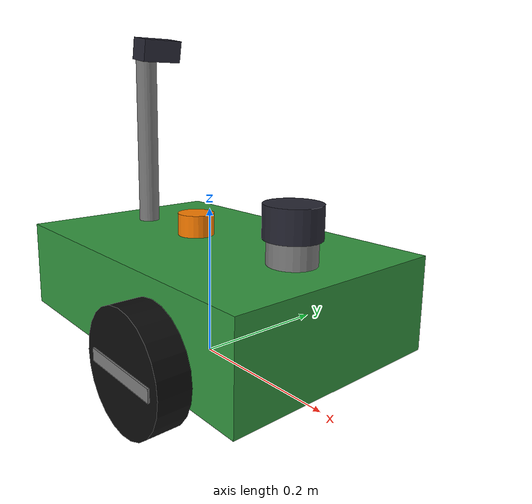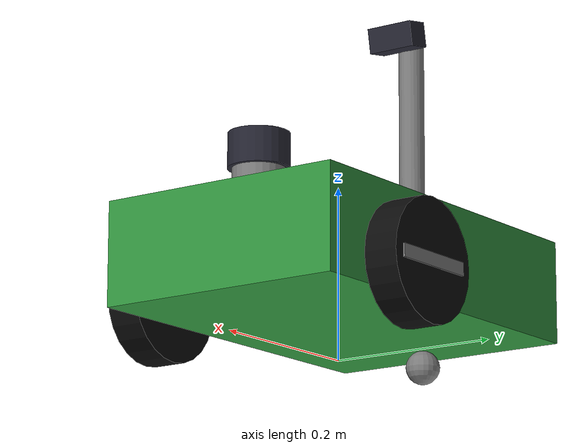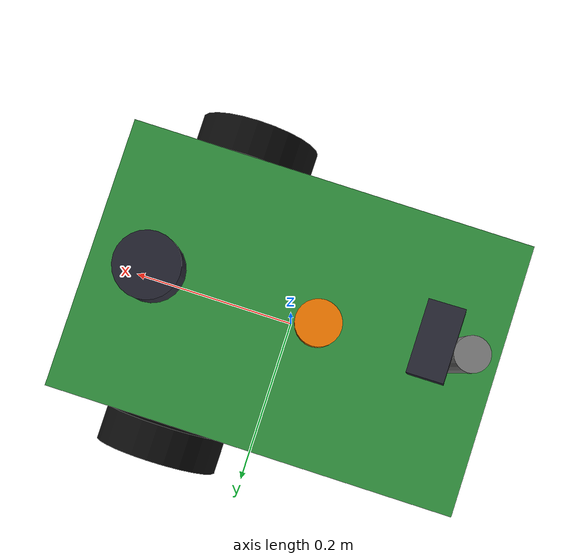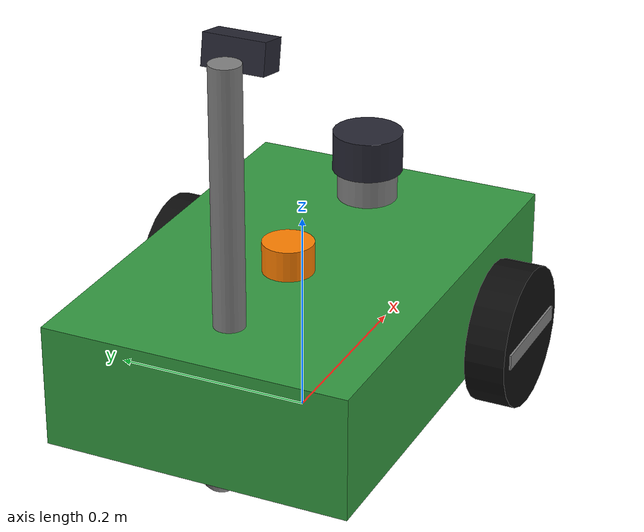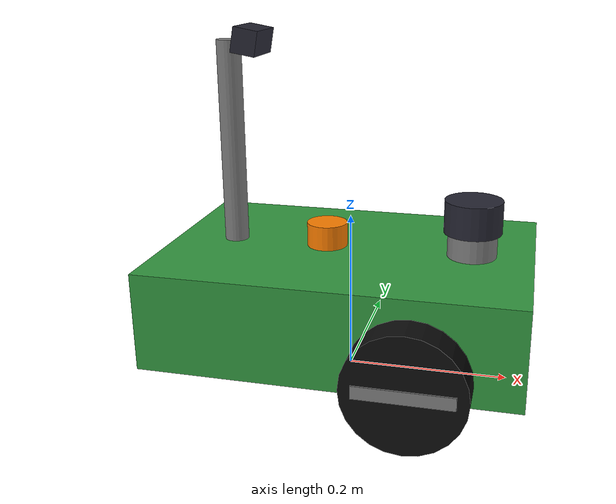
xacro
<?xml version="1.0"?>
<robot name="serabot" xmlns:xacro="http://www.ros.org/wiki/xacro">

  <xacro:include filename="inertial_macros.xacro"/>

  <!-- ===== Parametreler ===== -->
  <!-- Gövde -->
  <xacro:property name="body_length" value="0.45"/>
  <xacro:property name="body_width"  value="0.30"/>
  <xacro:property name="body_height" value="0.12"/>
  <xacro:property name="body_mass"   value="5.0"/>
  <xacro:property name="ground_clearance" value="0.04"/>

  <!-- Tekerlekler (gövdenin ön yarısında) -->
  <xacro:property name="wheel_radius" value="0.07"/>
  <xacro:property name="wheel_width"  value="0.04"/>
  <xacro:property name="wheel_mass"   value="0.5"/>
  <xacro:property name="wheel_x"      value="0.10"/>
  <xacro:property name="wheel_gap"    value="0.005"/>

  <!-- Arka küresel caster -->
  <xacro:property name="caster_radius" value="${ground_clearance/2}"/>
  <xacro:property name="caster_mass"   value="0.1"/>
  <xacro:property name="caster_x"      value="-0.17"/>

  <!-- Direk -->
  <xacro:property name="mast_radius" value="0.015"/>
  <xacro:property name="mast_height" value="0.25"/>
  <xacro:property name="mast_mass"   value="0.2"/>
  <xacro:property name="mast_x"      value="-0.15"/>

  <!-- LiDAR ve kaidesi -->
  <xacro:property name="lidar_x"        value="0.15"/>
  <xacro:property name="lidar_radius"   value="0.035"/>
  <xacro:property name="lidar_height"   value="0.04"/>
  <xacro:property name="lidar_mass"     value="0.15"/>
  <xacro:property name="pedestal_radius" value="0.03"/>
  <xacro:property name="pedestal_height" value="0.03"/>

  <!-- Kamera -->
  <xacro:property name="camera_size_x" value="0.03"/>
  <xacro:property name="camera_size_y" value="0.06"/>
  <xacro:property name="camera_size_z" value="0.03"/>
  <xacro:property name="camera_mass"   value="0.05"/>
  <xacro:property name="camera_pitch"  value="${10*pi/180}"/>

  <!-- Durum lambası -->
  <xacro:property name="lamp_radius" value="0.025"/>
  <xacro:property name="lamp_height" value="0.03"/>
  <xacro:property name="lamp_x"      value="-0.03"/>

  <!-- Türetilen değerler -->
  <xacro:property name="base_z" value="${ground_clearance + body_height/2}"/>
  <xacro:property name="wheel_y" value="${body_width/2 + wheel_width/2 + wheel_gap}"/>

  <!-- ===== Renkler ===== -->
  <material name="green">  <color rgba="0.20 0.60 0.25 1"/></material>
  <material name="black">  <color rgba="0.05 0.05 0.05 1"/></material>
  <material name="grey">   <color rgba="0.50 0.50 0.50 1"/></material>
  <material name="dark">   <color rgba="0.15 0.15 0.20 1"/></material>
  <material name="orange"> <color rgba="1.00 0.50 0.00 1"/></material>

  <!-- ===== base_footprint: zemindeki referans frame ===== -->
  <link name="base_footprint"/>

  <joint name="base_joint" type="fixed">
    <parent link="base_footprint"/>
    <child link="base_link"/>
    <origin xyz="0 0 ${base_z}" rpy="0 0 0"/>
  </joint>

  <!-- ===== Gövde ===== -->
  <link name="base_link">
    <visual>
      <geometry><box size="${body_length} ${body_width} ${body_height}"/></geometry>
      <material name="green"/>
    </visual>
    <collision>
      <geometry><box size="${body_length} ${body_width} ${body_height}"/></geometry>
    </collision>
    <xacro:inertial_box mass="${body_mass}" x="${body_length}" y="${body_width}" z="${body_height}">
      <origin xyz="0 0 0" rpy="0 0 0"/>
    </xacro:inertial_box>
  </link>

  <!-- ===== Tahrikli tekerlekler ===== -->
  <xacro:macro name="wheel" params="prefix y_sign">
    <link name="${prefix}_wheel_link">
      <visual>
        <origin xyz="0 0 0" rpy="${-pi/2} 0 0"/>
        <geometry><cylinder radius="${wheel_radius}" length="${wheel_width}"/></geometry>
        <material name="black"/>
      </visual>
      <!-- Dış yüzdeki gri şerit: tekerleğin döndüğü gözle görülebilsin -->
      <visual>
        <origin xyz="0 ${y_sign*(wheel_width/2 + 0.001)} 0" rpy="0 0 0"/>
        <geometry><box size="${1.6*wheel_radius} 0.002 0.015"/></geometry>
        <material name="grey"/>
      </visual>
      <collision>
        <origin xyz="0 0 0" rpy="${-pi/2} 0 0"/>
        <geometry><cylinder radius="${wheel_radius}" length="${wheel_width}"/></geometry>
      </collision>
      <xacro:inertial_cylinder mass="${wheel_mass}" radius="${wheel_radius}" length="${wheel_width}">
        <origin xyz="0 0 0" rpy="${-pi/2} 0 0"/>
      </xacro:inertial_cylinder>
    </link>

    <joint name="${prefix}_wheel_joint" type="continuous">
      <parent link="base_link"/>
      <child link="${prefix}_wheel_link"/>
      <origin xyz="${wheel_x} ${y_sign*wheel_y} ${wheel_radius - base_z}" rpy="0 0 0"/>
      <axis xyz="0 1 0"/>
    </joint>
  </xacro:macro>

  <xacro:wheel prefix="left"  y_sign="1"/>
  <xacro:wheel prefix="right" y_sign="-1"/>

  <!-- ===== Arka küresel caster ===== -->
  <link name="caster_link">
    <visual>
      <geometry><sphere radius="${caster_radius}"/></geometry>
      <material name="grey"/>
    </visual>
    <collision>
      <geometry><sphere radius="${caster_radius}"/></geometry>
    </collision>
    <xacro:inertial_sphere mass="${caster_mass}" radius="${caster_radius}">
      <origin xyz="0 0 0" rpy="0 0 0"/>
    </xacro:inertial_sphere>
  </link>

  <joint name="caster_joint" type="fixed">
    <parent link="base_link"/>
    <child link="caster_link"/>
    <origin xyz="${caster_x} 0 ${caster_radius - base_z}" rpy="0 0 0"/>
  </joint>

  <!-- ===== Direk ===== -->
  <link name="mast_link">
    <visual>
      <geometry><cylinder radius="${mast_radius}" length="${mast_height}"/></geometry>
      <material name="grey"/>
    </visual>
    <collision>
      <geometry><cylinder radius="${mast_radius}" length="${mast_height}"/></geometry>
    </collision>
    <xacro:inertial_cylinder mass="${mast_mass}" radius="${mast_radius}" length="${mast_height}">
      <origin xyz="0 0 0" rpy="0 0 0"/>
    </xacro:inertial_cylinder>
  </link>

  <joint name="mast_joint" type="fixed">
    <parent link="base_link"/>
    <child link="mast_link"/>
    <origin xyz="${mast_x} 0 ${body_height/2 + mast_height/2}" rpy="0 0 0"/>
  </joint>

  <!-- ===== LiDAR (kaide dahil). lidar_link orijini = tarama düzlemi ===== -->
  <link name="lidar_link">
    <visual>
      <geometry><cylinder radius="${lidar_radius}" length="${lidar_height}"/></geometry>
      <material name="dark"/>
    </visual>
    <visual>
      <origin xyz="0 0 ${-(lidar_height/2 + pedestal_height/2)}" rpy="0 0 0"/>
      <geometry><cylinder radius="${pedestal_radius}" length="${pedestal_height}"/></geometry>
      <material name="grey"/>
    </visual>
    <collision>
      <origin xyz="0 0 ${-pedestal_height/2}" rpy="0 0 0"/>
      <geometry><cylinder radius="${lidar_radius}" length="${lidar_height + pedestal_height}"/></geometry>
    </collision>
    <xacro:inertial_cylinder mass="${lidar_mass}" radius="${lidar_radius}" length="${lidar_height}">
      <origin xyz="0 0 0" rpy="0 0 0"/>
    </xacro:inertial_cylinder>
  </link>

  <joint name="lidar_joint" type="fixed">
    <parent link="base_link"/>
    <child link="lidar_link"/>
    <origin xyz="${lidar_x} 0 ${body_height/2 + pedestal_height + lidar_height/2}" rpy="0 0 0"/>
  </joint>

  <!-- ===== Kamera (direğin tepesinde, ~10° aşağı bakıyor) ===== -->
  <link name="camera_link">
    <visual>
      <geometry><box size="${camera_size_x} ${camera_size_y} ${camera_size_z}"/></geometry>
      <material name="dark"/>
    </visual>
    <collision>
      <geometry><box size="${camera_size_x} ${camera_size_y} ${camera_size_z}"/></geometry>
    </collision>
    <xacro:inertial_box mass="${camera_mass}" x="${camera_size_x}" y="${camera_size_y}" z="${camera_size_z}">
      <origin xyz="0 0 0" rpy="0 0 0"/>
    </xacro:inertial_box>
  </link>

  <joint name="camera_joint" type="fixed">
    <parent link="mast_link"/>
    <child link="camera_link"/>
    <origin xyz="${mast_radius + camera_size_x/2} 0 ${mast_height/2}" rpy="0 ${camera_pitch} 0"/>
  </joint>

  <!-- Optik frame (REP 103): z ileri, x sağa, y aşağı. Görüntü mesajları bu frame'i kullanır -->
  <link name="camera_optical_link"/>

  <joint name="camera_optical_joint" type="fixed">
    <parent link="camera_link"/>
    <child link="camera_optical_link"/>
    <origin xyz="0 0 0" rpy="${-pi/2} 0 ${-pi/2}"/>
  </joint>

  <!-- ===== IMU (gövde merkezinde) ===== -->
  <link name="imu_link"/>

  <joint name="imu_joint" type="fixed">
    <parent link="base_link"/>
    <child link="imu_link"/>
    <origin xyz="0 0 0" rpy="0 0 0"/>
  </joint>

  <!-- ===== Durum lambası (sadece görsel) ===== -->
  <link name="lamp_link">
    <visual>
      <geometry><cylinder radius="${lamp_radius}" length="${lamp_height}"/></geometry>
      <material name="orange"/>
    </visual>
  </link>

  <joint name="lamp_joint" type="fixed">
    <parent link="base_link"/>
    <child link="lamp_link"/>
    <origin xyz="${lamp_x} 0 ${body_height/2 + lamp_height/2}" rpy="0 0 0"/>
  </joint>

  <!-- ===== Gazebo plugin'leri (yukarıdaki parametreleri kullanır) ===== -->
  <xacro:include filename="serabot_gazebo.xacro"/>

  <!-- ===== Sensörler ===== -->
  <xacro:include filename="serabot_sensors.xacro"/>

</robot>

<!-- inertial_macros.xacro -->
<robot xmlns:xacro="http://www.ros.org/wiki/xacro">

  <xacro:macro name="inertial_box" params="mass x y z *origin">
    <inertial>
      <xacro:insert_block name="origin"/>
      <mass value="${mass}"/>
      <inertia ixx="${mass*(y*y+z*z)/12}" ixy="0" ixz="0"
               iyy="${mass*(x*x+z*z)/12}" iyz="0"
               izz="${mass*(x*x+y*y)/12}"/>
    </inertial>
  </xacro:macro>

  <xacro:macro name="inertial_cylinder" params="mass radius length *origin">
    <inertial>
      <xacro:insert_block name="origin"/>
      <mass value="${mass}"/>
      <inertia ixx="${mass*(3*radius*radius+length*length)/12}" ixy="0" ixz="0"
               iyy="${mass*(3*radius*radius+length*length)/12}" iyz="0"
               izz="${mass*radius*radius/2}"/>
    </inertial>
  </xacro:macro>

  <xacro:macro name="inertial_sphere" params="mass radius *origin">
    <inertial>
      <xacro:insert_block name="origin"/>
      <mass value="${mass}"/>
      <inertia ixx="${2*mass*radius*radius/5}" ixy="0" ixz="0"
               iyy="${2*mass*radius*radius/5}" iyz="0"
               izz="${2*mass*radius*radius/5}"/>
    </inertial>
  </xacro:macro>

</robot>
